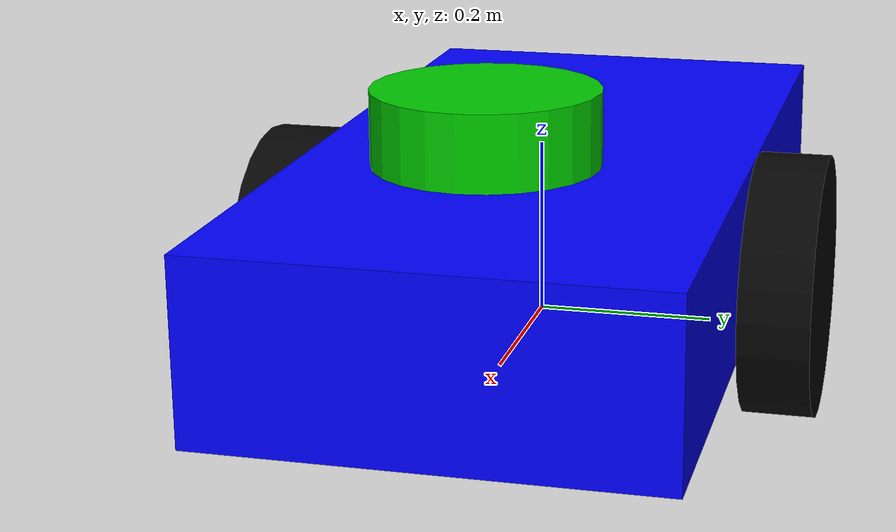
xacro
<?xml version="1.0"?>

<robot name="simple_robot"
       xmlns:xacro="http://www.ros.org/wiki/xacro">

  <!-- Parametri principali      -->

  <xacro:property name="base_length" value="1.0"/>
  <xacro:property name="base_width"  value="0.5"/>
  <xacro:property name="base_height" value="0.2"/>

  <xacro:property name="wheel_radius" value="0.15"/>
  <xacro:property name="wheel_width"  value="0.08"/>
  <xacro:property name="wheel_y"      value="0.29"/>
  <xacro:property name="wheel_z"      value="-0.05"/>

  <xacro:property name="caster_radius" value="0.08"/>

  <xacro:property name="lidar_radius" value="0.12"/>
  <xacro:property name="lidar_length" value="0.08"/>

  <!-- World                     -->

  <link name="world"/>

  <joint name="world_to_base_link" type="fixed">
    <parent link="world"/>
    <child link="base_link"/>
    <origin xyz="0 0 0.1" rpy="0 0 0"/>
  </joint>

  <!-- Base                      -->

  <link name="base_link">

    <visual>
      <geometry>
        <box size="${base_length} ${base_width} ${base_height}"/>
      </geometry>

      <material name="blue">
        <color rgba="0.0 0.0 1.0 1.0"/>
      </material>
    </visual>

    <collision>
      <geometry>
        <box size="${base_length} ${base_width} ${base_height}"/>
      </geometry>
    </collision>

    <inertial>
      <mass value="5.0"/>

      <inertia
        ixx="0.12"
        ixy="0.0"
        ixz="0.0"
        iyy="0.42"
        iyz="0.0"
        izz="0.52"/>
    </inertial>

  </link>

  <!-- Left wheel                -->

  <link name="left_wheel_link">

    <visual>
      <origin xyz="0 0 0" rpy="1.5708 0 0"/>

      <geometry>
        <cylinder radius="${wheel_radius}"
                  length="${wheel_width}"/>
      </geometry>

      <material name="black">
        <color rgba="0.02 0.02 0.02 1.0"/>
      </material>
    </visual>

  </link>

  <joint name="left_wheel_joint" type="continuous">

    <parent link="base_link"/>
    <child link="left_wheel_link"/>

    <origin xyz="0 ${wheel_y} ${wheel_z}"
            rpy="0 0 0"/>

    <axis xyz="0 1 0"/>

  </joint>

  <!-- Right wheel               -->

  <link name="right_wheel_link">

    <visual>
      <origin xyz="0 0 0" rpy="1.5708 0 0"/>

      <geometry>
        <cylinder radius="${wheel_radius}"
                  length="${wheel_width}"/>
      </geometry>

      <material name="black">
        <color rgba="0.02 0.02 0.02 1.0"/>
      </material>
    </visual>

  </link>

  <joint name="right_wheel_joint" type="continuous">

    <parent link="base_link"/>
    <child link="right_wheel_link"/>

    <origin xyz="0 ${-wheel_y} ${wheel_z}"
            rpy="0 0 0"/>

    <axis xyz="0 1 0"/>

  </joint>

  <!-- Caster wheel              -->

  <link name="caster_wheel_link">

    <visual>
      <geometry>
        <sphere radius="${caster_radius}"/>
      </geometry>

      <material name="gray">
        <color rgba="0.5 0.5 0.5 1.0"/>
      </material>
    </visual>

  </link>

  <joint name="caster_wheel_joint" type="fixed">

    <parent link="base_link"/>
    <child link="caster_wheel_link"/>

    <origin xyz="-0.35 0 -0.10"
            rpy="0 0 0"/>

  </joint>

  <!-- Lidar                     -->

  <link name="lidar_link">

    <visual>

      <geometry>
        <cylinder radius="${lidar_radius}"
                  length="${lidar_length}"/>
      </geometry>

      <material name="green">
        <color rgba="0.0 0.8 0.0 1.0"/>
      </material>

    </visual>

  </link>

  <joint name="lidar_joint" type="fixed">

    <parent link="base_link"/>
    <child link="lidar_link"/>

    <origin xyz="0.25 0 0.18"
            rpy="0 0 0"/>

  </joint>

</robot>
